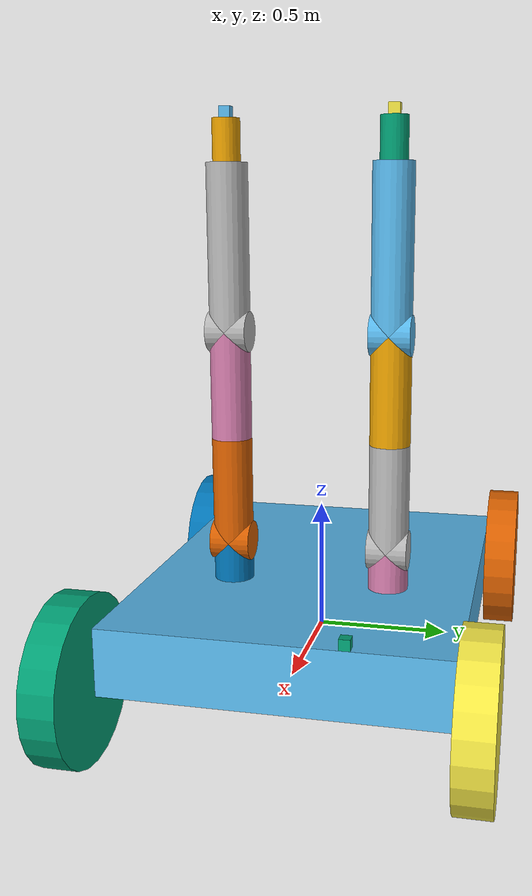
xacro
<?xml version="1.0"?>

<robot name="boxxo" xmlns:xacro="http://www.ros.org/wiki/xacro">

	<gazebo>
        <plugin name="gazebo_ros_control" filename="libgazebo_ros_control.so">
            <robotNamespace>boxxo</robotNamespace>
        </plugin>
    </gazebo>

	<xacro:include filename="$(find boxxo_core)/urdf/wheel.urdf.xacro"/>
	<xacro:include filename="$(find boxxo_core)/urdf/boxxo_arm.urdf.xacro"/>
	<xacro:include filename="$(find boxxo_core)/urdf/camera.urdf.xacro"/>

    <!-- Chassis Properties -->
	<xacro:property name="chassis_length" value="1.6256"/>
	<xacro:property name="chassis_width" value="1.2446"/>
	<xacro:property name="chassis_height" value="0.25"/>
	<xacro:property name="chassis_mass" value="200"/>

	<!-- Wheel Properties -->
	<xacro:property name="wheel_depth" value="0.1286"/>
	<xacro:property name="wheel_radius" value="0.3032"/>
	<xacro:property name="wheel_mass" value="35"/>
	<xacro:property name="wheel_x_spacing" value="${chassis_length/2}"/>
	<xacro:property name="wheel_y_spacing" value="${chassis_width/2}"/>
	<xacro:property name="wheel_z_spacing" value="${chassis_height/4}"/>

	<!-- Arm Location -->
	<xacro:property name="boxxo_arm_x" value=".2064"/>
	<xacro:property name="boxxo_arm_y" value=".3"/>
	<xacro:property name="boxxo_arm_z" value=".4"/>

	<link name="base_link"/>

	<!-- The chassis of the rover -->
	<link name="chassie">
		<visual>
			<origin xyz="0 0 0.125" rpy="0 0 0"/>
			<geometry>
				<box size="${chassis_length} ${chassis_width} ${chassis_height}"/>
			</geometry>
		</visual>
		<collision>
			<origin xyz="0 0 0.125" rpy="0 0 0"/>
			<geometry>
				<box size="${chassis_length} ${chassis_width} ${chassis_height}"/>
			</geometry>
		</collision>

		<inertial>
			<origin xyz="0 0 0.125" rpy="0 0 0"/>
			<mass value="${chassis_mass}"/>
			<inertia ixx="1.25" ixy="0.0" ixz="0.0" iyy="7.0" iyz="0.0" izz="0.0" />
		</inertial>
	</link>
	<joint name="reality_glue" type="fixed">
		<parent link="base_link"/>
		<child link="chassie"/>
	</joint>

	<xacro:wheel prefix="front_left" parent="chassie" wheelrad="${wheel_radius}" wheeldepth="${wheel_depth}" wheelkg="${wheel_mass}">
		<origin xyz="${wheel_x_spacing} -${wheel_y_spacing + (wheel_depth/2)} ${wheel_z_spacing}" rpy="0 0 0"/>
		<inertia ixx="0.08" ixy="0.0" ixz="0.0" iyy="0.14" iyz="0.0" izz="0.08"/>
	</xacro:wheel>
	<xacro:wheel prefix="front_right" parent="chassie" wheelrad="${wheel_radius}" wheeldepth="${wheel_depth}" wheelkg="${wheel_mass}">
		<origin xyz="${wheel_x_spacing} ${wheel_y_spacing + (wheel_depth/2)} ${wheel_z_spacing}" rpy="0 0 0"/>
		<inertia ixx="0.08" ixy="0.0" ixz="0.0" iyy="0.14" iyz="0.0" izz="0.08"/>
	</xacro:wheel>
	<xacro:wheel prefix="rear_left" parent="chassie" wheelrad="${wheel_radius}" wheeldepth="${wheel_depth}" wheelkg="${wheel_mass}">
		<origin xyz="-${wheel_x_spacing} -${wheel_y_spacing + (wheel_depth/2)} ${wheel_z_spacing}" rpy="0 0 0"/>
		<inertia ixx="0.08" ixy="0.0" ixz="0.0" iyy="0.14" iyz="0.0" izz="0.08"/>
	</xacro:wheel>
	<xacro:wheel prefix="rear_right" parent="chassie" wheelrad="${wheel_radius}" wheeldepth="${wheel_depth}" wheelkg="${wheel_mass}">
		<origin xyz="-${wheel_x_spacing} ${wheel_y_spacing + (wheel_depth/2)} ${wheel_z_spacing}" rpy="0 0 0"/>
		<inertia ixx="0.08" ixy="0.0" ixz="0.0" iyy="0.14" iyz="0.0" izz="0.08"/>
	</xacro:wheel>

	<xacro:boxxo_arm endeffector="camera" prefix="left" parent="chassie">
		<origin xyz="${boxxo_arm_x} ${boxxo_arm_y} ${boxxo_arm_z}" rpy="0 0 0"/>
	</xacro:boxxo_arm>
	<xacro:boxxo_arm endeffector="camera" prefix="right" parent="chassie">
		<origin xyz="${boxxo_arm_x} -${boxxo_arm_y} ${boxxo_arm_z}" rpy="0 0 0"/>
	</xacro:boxxo_arm>

	<xacro:boxxo_camera prefix="body" parent="chassie">
		<origin xyz="${chassis_length/2-0.04} 0.25 ${chassis_height+0.02}" rpy="0 0 0"/>
	</xacro:boxxo_camera>

</robot>

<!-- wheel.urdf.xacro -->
<robot name="boxxo" xmlns:xacro="http://www.ros.org/wiki/xacro">

<xacro:macro name="wheel" params="prefix parent wheelrad wheeldepth wheelkg *origin *inertia">

	<xacro:property name="PI" value="3.1415926535897931"/>

	<link name="${prefix}_wheel_link">
		<visual>
			<origin xyz="0 0 0" rpy="${PI/2} 0 0"/>
			<geometry>
				<cylinder radius="${wheelrad}" length="${wheeldepth}"/>
			</geometry>
		</visual>
		<collision>
			<origin xyz="0 0 0" rpy="${PI/2} 0 0"/>
			<geometry>
				<cylinder radius="${wheelrad}" length="${wheeldepth}"/>
			</geometry>
		</collision>

		<inertial>
			<origin xyz="0 0 0" rpy="${PI/2} 0 0"/>
			<mass value="${wheelkg}"/>
			<xacro:insert_block name="inertia"/>
		</inertial>
	</link>

	<joint name="${prefix}_wheel" type="continuous">
		<parent link="${parent}"/>
		<child link="${prefix}_wheel_link"/>
		<xacro:insert_block name="origin"/>
		<axis xyz="0 1 0"/>
	</joint>

	<transmission name="${prefix}_wheel_trans">
		<type>transmission_interface/SimpleTransmission</type>
		<joint name="${prefix}_wheel">
			<hardwareInterface>hardware_interface/VelocityJointInterface</hardwareInterface>
		</joint>
		<actuator name="${prefix}_motor">
			<hardwareInterface>hardware_interface/VelocityJointInterface</hardwareInterface>
			<mechanicalreduction>1</mechanicalreduction>
		</actuator>
	</transmission>

</xacro:macro>
</robot>

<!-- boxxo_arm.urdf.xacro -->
<robot name="boxxo_arm" xmlns:xacro="https://wiki.ros.org/xacro">

	<xacro:include filename="$(find boxxo_core)/urdf/camera.urdf.xacro"/>

	<xacro:macro name="boxxo_arm" params="endeffector prefix parent *origin">

		<xacro:property name="motor_height" value=".15"/>
		<xacro:property name="link_diameter" value=".15"/>
		<xacro:property name="base_to_j1" value=".3"/>
		<xacro:property name="j1_to_j2" value="0.0"/>
		<xacro:property name="j2_to_j3" value=".4"/>
		<xacro:property name="j3_to_j4" value=".4"/>
		<xacro:property name="j4_to_j5" value=".6"/>
		<xacro:property name="ee_length" value=".15"/>

		<!-- JOINT 1 -->
		<link name="${prefix}_j1_link">
			<visual>
				<origin xyz="0 0 -${base_to_j1/2}" rpy="0 0 0"/>
				<geometry>
					<cylinder radius="${link_diameter/2}" length="${base_to_j1}"/>
				</geometry>
			</visual>
			<collision>
				<origin xyz="0 0 -${base_to_j1/2}" rpy="0 0 0"/>
				<geometry>
					<cylinder radius="${link_diameter/2}" length="${base_to_j1}"/>
				</geometry>
			</collision>

			<inertial>
				<origin xyz="0 0 0" rpy="0 0 0"/>
				<mass value="1"/>
				<inertia ixx="1" ixy="1" ixz="1"
							 	 iyy="1" iyz="1"
								 		 izz="1"/>
			</inertial>
		</link>

		<joint name="${prefix}_j1" type="revolute">
			<parent link="${parent}"/>
			<child link="${prefix}_j1_link"/>
			<axis xyz="0 0 1"/>
			<dynamics damping="0.0" friction="0.5"/>
			<limit lower="-3.14" upper="3.14" velocity=".25" effort="300"/>
			<xacro:insert_block name="origin"/>
		</joint>

		<!-- JOINT 2 -->
		<link name="${prefix}_j2_link">
			<!-- MOTOR -->
			<visual>
				<origin xyz="0 0 0" rpy="0 0 0"/>
				<geometry>
					<cylinder radius="${link_diameter/2}" length="${motor_height}"/>
				</geometry>
			</visual>
			<collision>
				<origin xyz="0 0 0" rpy="0 0 0"/>
				<geometry>
					<cylinder radius="${link_diameter/2}" length="${motor_height}"/>
				</geometry>
			</collision>

			<!-- LINK -->
			<visual>
				<origin xyz="0 ${j2_to_j3/2} 0" rpy="1.57079632679 0 0"/>
				<geometry>
					<cylinder radius="${link_diameter/2}" length="${j2_to_j3}"/>
				</geometry>
			</visual>
			<collision>
				<origin xyz="0 ${j2_to_j3/2} 0" rpy="1.57079632679 0 0"/>
				<geometry>
					<cylinder radius="${link_diameter/2}" length="${j2_to_j3}"/>
				</geometry>
			</collision>

			<inertial>
				<origin xyz="0 ${j2_to_j3/2} 0" rpy="0 0 0"/>
				<mass value="1"/>
				<inertia ixx="1" ixy="1" ixz="1"
							 	 iyy="1" iyz="1"
								 		 izz="1"/>
			</inertial>
		</link>

		<joint name="${prefix}_j2" type="revolute">
			<origin xyz="0 0 0" rpy="1.57079632679 0 0"/>
			<parent link="${prefix}_j1_link"/>
			<child link="${prefix}_j2_link"/>
			<axis xyz="0 0 1"/>
			<dynamics damping="0.0" friction="0.5"/>
			<limit lower="-3.14" upper="3.14" velocity=".25" effort="300"/>
		</joint>

		<!-- JOINT 3 -->
		<link name="${prefix}_j3_link">

			<!-- LINK -->
			<visual>
				<origin xyz="0 0 ${j3_to_j4/2}" rpy="0 0 0"/>
				<geometry>
					<cylinder radius="${link_diameter/2}" length="${j3_to_j4}"/>
				</geometry>
			</visual>
			<collision>
				<origin xyz="0 0 ${j3_to_j4/2}" rpy="0 0 0"/>
				<geometry>
					<cylinder radius="${link_diameter/2}" length="${j3_to_j4}"/>
				</geometry>
			</collision>

			<inertial>
				<origin xyz="0 ${j3_to_j4/2} 0" rpy="0 0 0"/>
				<mass value="1"/>
				<inertia ixx="1" ixy="1" ixz="1"
							 	 iyy="1" iyz="1"
								 		 izz="1"/>
			</inertial>
		</link>

		<joint name="${prefix}_j3" type="revolute">
			<origin xyz="0 ${j2_to_j3} 0" rpy="-1.57079632679 0 0"/>
			<parent link="${prefix}_j2_link"/>
			<child link="${prefix}_j3_link"/>
			<axis xyz="0 0 1"/>
			<dynamics damping="0.0" friction="0.5"/>
			<limit lower="-3.14" upper="3.14" velocity=".25" effort="300"/>
		</joint>

		<!-- JOINT 4 -->
		<link name="${prefix}_j4_link">
			<!-- MOTOR -->
			<visual>
				<origin xyz="0 0 0" rpy="0 0 0"/>
				<geometry>
					<cylinder radius="${link_diameter/2}" length="${motor_height}"/>
				</geometry>
			</visual>
			<collision>
				<origin xyz="0 0 0" rpy="0 0 0"/>
				<geometry>
					<cylinder radius="${link_diameter/2}" length="${motor_height}"/>
				</geometry>
			</collision>

			<!-- LINK -->
			<visual>
				<origin xyz="0 ${j4_to_j5/2} 0" rpy="1.57079632679 0 0"/>
				<geometry>
					<cylinder radius="${link_diameter/2}" length="${j4_to_j5}"/>
				</geometry>
			</visual>
			<collision>
				<origin xyz="0 ${j4_to_j5/2} 0" rpy="1.57079632679 0 0"/>
				<geometry>
					<cylinder radius="${link_diameter/2}" length="${j4_to_j5}"/>
				</geometry>
			</collision>

			<inertial>
				<origin xyz="0 ${j4_to_j5/2} 0" rpy="0 0 0"/>
				<mass value="1"/>
				<inertia ixx="1" ixy="1" ixz="1"
							 	 iyy="1" iyz="1"
								 		 izz="1"/>
			</inertial>
		</link>

		<joint name="${prefix}_j4" type="revolute">
			<origin xyz="0 0 ${j3_to_j4}" rpy="1.57079632679 0 0"/>
			<parent link="${prefix}_j3_link"/>
			<child link="${prefix}_j4_link"/>
			<axis xyz="0 0 1"/>
			<dynamics damping="0.0" friction="0.5"/>
			<limit lower="-3.14" upper="3.14" velocity=".25" effort="300"/>
		</joint>

		<!-- JOINT 5 -->
		<link name="${prefix}_j5_link">

			<!-- LINK -->
			<visual>
				<origin xyz="0 0 ${ee_length/2}" rpy="0 0 0"/>
				<geometry>
					<cylinder radius="${link_diameter/3}" length="${ee_length}"/>
				</geometry>
			</visual>
			<collision>
				<origin xyz="0 0 ${ee_length/2}" rpy="0 0 0"/>
				<geometry>
					<cylinder radius="${link_diameter/3}" length="${ee_length}"/>
				</geometry>
			</collision>

			<inertial>
				<origin xyz="0 ${j3_to_j4/2} 0" rpy="0 0 0"/>
				<mass value="1"/>
				<inertia ixx="1" ixy="1" ixz="1"
							 	 iyy="1" iyz="1"
								 		 izz="1"/>
			</inertial>
		</link>

		<joint name="${prefix}_j5" type="revolute">
			<origin xyz="0 ${j4_to_j5} 0" rpy="-1.57079632679 0 0"/>
			<parent link="${prefix}_j4_link"/>
			<child link="${prefix}_j5_link"/>
			<axis xyz="0 0 1"/>
			<dynamics damping="0.0" friction="0.5"/>
			<limit lower="-3.14" upper="3.14" velocity=".25" effort="300"/>
		</joint>

		<!-- ENDEFFECTOR IF STATEMENT -->
		<xacro:if value="${endeffector == 'camera'}">
			<xacro:boxxo_camera prefix="${prefix}" parent="${prefix}_j5_link">
				<origin xyz="0 0 ${ee_length}" rpy="0 -1.57079632679 0"/>
			</xacro:boxxo_camera>
		</xacro:if>

		<!-- TRANSMISSIONS -->
		<transmission name="${prefix}_j1">
			<type>tranmssion_interface/SimpleTransmission</type>
			<joint name="${prefix}_j1">
				<hardwareInterface>hardware_interface/VelocityJointInterface</hardwareInterface>
			</joint>
			<actuator name="$[prefix}_motor1">
				<mechanicalReduction>1</mechanicalReduction>
			</actuator>
		</transmission>

		<transmission name="${prefix}_j2">
			<type>tranmssion_interface/SimpleTransmission</type>
			<joint name="${prefix}_j2">
				<hardwareInterface>hardware_interface/VelocityJointInterface</hardwareInterface>
			</joint>
			<actuator name="$[prefix}_motor2">
				<mechanicalReduction>1</mechanicalReduction>
			</actuator>
		</transmission>

		<transmission name="${prefix}_j3">
			<type>tranmssion_interface/SimpleTransmission</type>
			<joint name="${prefix}_j3">
				<hardwareInterface>hardware_interface/VelocityJointInterface</hardwareInterface>
			</joint>
			<actuator name="$[prefix}_motor3">
				<mechanicalReduction>1</mechanicalReduction>
			</actuator>
		</transmission>

		<transmission name="${prefix}_j4">
			<type>tranmssion_interface/SimpleTransmission</type>
			<joint name="${prefix}_j4">
				<hardwareInterface>hardware_interface/VelocityJointInterface</hardwareInterface>
			</joint>
			<actuator name="$[prefix}_motor4">
				<mechanicalReduction>1</mechanicalReduction>
			</actuator>
		</transmission>

		<transmission name="${prefix}_j5">
			<type>tranmssion_interface/SimpleTransmission</type>
			<joint name="${prefix}_j5">
				<hardwareInterface>hardware_interface/VelocityJointInterface</hardwareInterface>
			</joint>
			<actuator name="$[prefix}_motor5">
				<mechanicalReduction>1</mechanicalReduction>
			</actuator>
		</transmission>

	</xacro:macro>
</robot>

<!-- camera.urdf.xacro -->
<robot name="boxxo_camera" xmlns:xacro="https://www.ros.org/wiki/xacro">

    <xacro:macro name="boxxo_camera" params="prefix parent *origin">

        <xacro:property name="camera_length" value="0.04"/>
        <xacro:property name="camera_width" value="0.04"/>
        <xacro:property name="camera_height" value="0.04"/>

        <!-- CAMERA LINK -->
        <link name="${prefix}_camera_tooltip">
            <visual>
                <origin xyz="${camera_height/2} 0 0" rpy="0 0 0"/>
                <geometry>
                    <box size="${camera_length} ${camera_width} ${camera_height}"/>
                </geometry>
            </visual>
            <collision>
                <origin xyz="${camera_height/2} 0 0" rpy="0 0 0"/>
                <geometry>
                    <box size="${camera_length} ${camera_width} ${camera_height}"/>
                </geometry>
            </collision>

            <inertial>
                <origin xyz="${camera_height/2} 0 0" rpy="0 0 0"/>
                <mass value="1"/>
                <inertia ixx="1" ixy="0" ixz="0"
                                 iyy="1" iyz="0"
                                         izz="1"/>
            </inertial>
        </link>

        <!-- CAMERA JOINT -->
        <joint name="${prefix}_camera_fixed_joint" type="fixed">
            <xacro:insert_block name="origin"/>
            <parent link="${parent}"/>
            <child link="${prefix}_camera_tooltip"/>
        </joint>

        <!-- CAMERA PLUGIN -->
        <gazebo reference="${prefix}_camera_tooltip">
            <sensor type="camera" name="camera1">
            <update_rate>30.0</update_rate>
            <camera name="head">
                <horizontal_fov>1.3962634</horizontal_fov>
                <image>
                <width>800</width>
                <height>800</height>
                <format>R8G8B8</format>
                </image>
                <clip>
                <near>0.02</near>
                <far>300</far>
                </clip>
                <noise>
                <type>gaussian</type>
                <mean>0.0</mean>
                <stddev>0.007</stddev>
                </noise>
            </camera>
            <plugin name="${prefix}_camera_controller" filename="libgazebo_ros_camera.so">
                <alwaysOn>true</alwaysOn>
                <updateRate>0.0</updateRate>
                <!-- Don't need to add a "/boxxo" namespace to cameraName, it adds it automatically! -->
                <cameraName>${prefix}_camera1</cameraName>
                <tf_prefix_>""</tf_prefix_>
                <imageTopicName>/boxxo/${prefix}_camera/camera_image_node/images</imageTopicName>
                <cameraInfoTopicName>/boxxo/${prefix}_camera/camera_image_node/camera_info</cameraInfoTopicName>
                <frameName>${prefix}_camera_link</frameName>
                <hackBaseline>0.07</hackBaseline>
                <distortionK1>0.0</distortionK1>
                <distortionK2>0.0</distortionK2>
                <distortionK3>0.0</distortionK3>
                <distortionT1>0.0</distortionT1>
                <distortionT2>0.0</distortionT2>
            </plugin>
            </sensor>
        </gazebo>

    </xacro:macro>

</robot>
